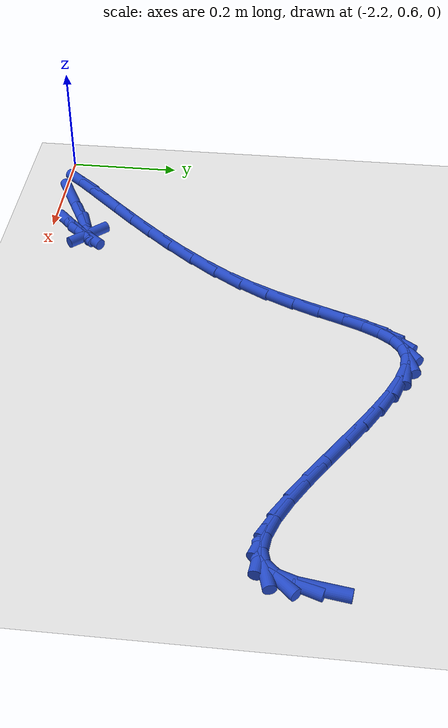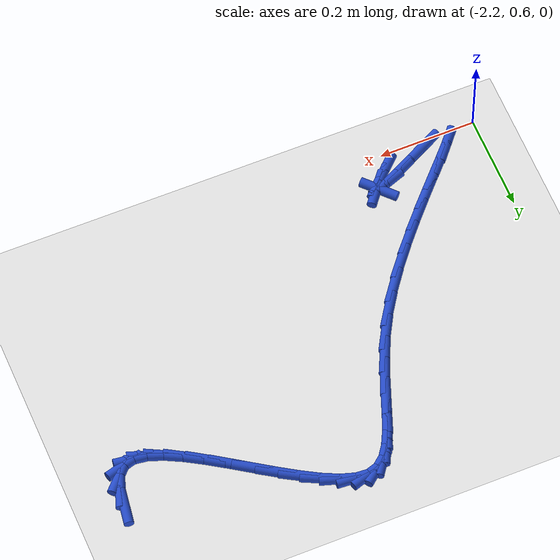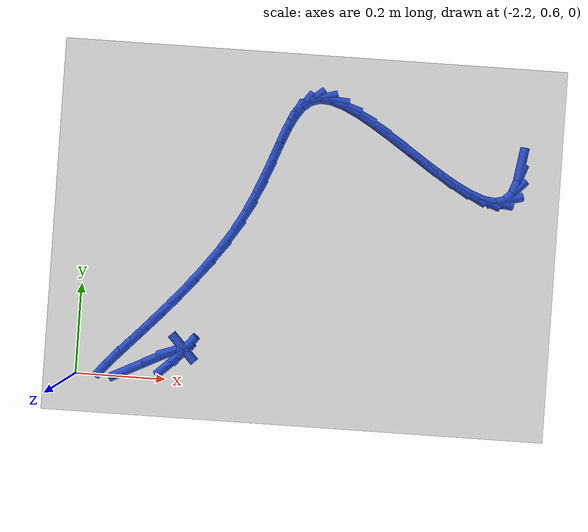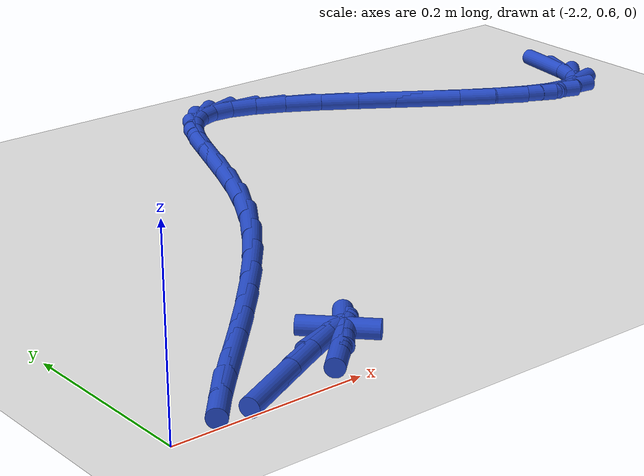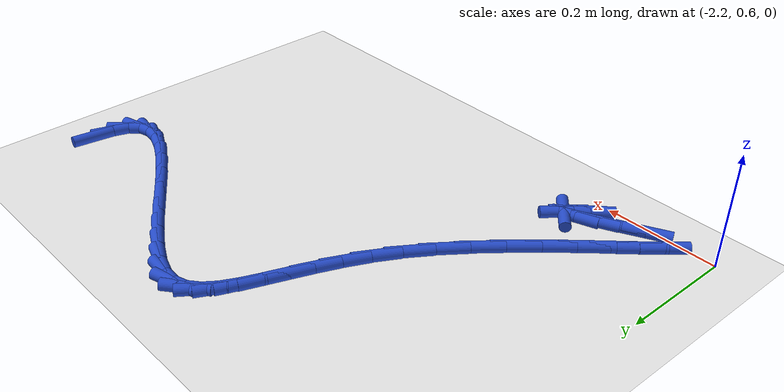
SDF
<sdf version="1.6">
 <world name="default">
  <model name="ground_plane">
   <static>1</static>
   <link name="link">
    <collision name="collision">
     <geometry><plane><normal>0 0 1</normal><size>100 100</size></plane></geometry>
     <surface><friction><ode><mu>100</mu><mu2>50</mu2></ode></friction></surface>
    </collision>
    <visual name="visual">
     <cast_shadows>0</cast_shadows>
     <geometry><plane><normal>0 0 1</normal><size>100 100</size></plane></geometry>
     <material>
      <script><uri>file://media/materials/scripts/gazebo.material</uri><name>Gazebo/WhiteGlow</name></script>
     </material>
    </visual>
   </link>
  </model>
  <model name="line">
   <link name="link_63">
    <pose>-1.2455601333749464 1.128434123868443 0.01 0 1.57 1.4183163308471</pose>
    <collision name="collision">
     <geometry><cylinder><radius>0.01</radius><length>0.08</length></cylinder></geometry>
    </collision>
    <visual name="visual">
     <material>
      <script><name>Gazebo/Blue</name><uri>file://media/materials/scripts/gazebo.material</uri></script>
     </material>
     <geometry><cylinder><radius>0.01</radius><length>0.08</length></cylinder></geometry>
    </visual>
   </link>
   <link name="link_64">
    <pose>-1.2509893350158225 1.0931045079351944 0.01 0 1.57 1.2281784227628185</pose>
    <collision name="collision">
     <geometry><cylinder><radius>0.01</radius><length>0.08</length></cylinder></geometry>
    </collision>
    <visual name="visual">
     <material>
      <script><name>Gazebo/Blue</name><uri>file://media/materials/scripts/gazebo.material</uri></script>
     </material>
     <geometry><cylinder><radius>0.01</radius><length>0.08</length></cylinder></geometry>
    </visual>
   </link>
   <link name="link_65">
    <pose>-1.2607478458669774 1.0657456108577843 0.01 0 1.57 0.8130356119794419</pose>
    <collision name="collision">
     <geometry><cylinder><radius>0.01</radius><length>0.08</length></cylinder></geometry>
    </collision>
    <visual name="visual">
     <material>
      <script><name>Gazebo/Blue</name><uri>file://media/materials/scripts/gazebo.material</uri></script>
     </material>
     <geometry><cylinder><radius>0.01</radius><length>0.08</length></cylinder></geometry>
    </visual>
   </link>
   <link name="link_66">
    <pose>-1.2763374845315405 1.0492695318625107 0.01 0 1.57 0.2641855386854352</pose>
    <collision name="collision">
     <geometry><cylinder><radius>0.01</radius><length>0.08</length></cylinder></geometry>
    </collision>
    <visual name="visual">
     <material>
      <script><name>Gazebo/Blue</name><uri>file://media/materials/scripts/gazebo.material</uri></script>
     </material>
     <geometry><cylinder><radius>0.01</radius><length>0.08</length></cylinder></geometry>
    </visual>
   </link>
   <link name="link_67">
    <pose>-1.2976512958888897 1.0435039689364574 0.01 0 1.57 -0.1289506563340826</pose>
    <collision name="collision">
     <geometry><cylinder><radius>0.01</radius><length>0.08</length></cylinder></geometry>
    </collision>
    <visual name="visual">
     <material>
      <script><name>Gazebo/Blue</name><uri>file://media/materials/scripts/gazebo.material</uri></script>
     </material>
     <geometry><cylinder><radius>0.01</radius><length>0.08</length></cylinder></geometry>
    </visual>
   </link>
   <link name="link_68">
    <pose>-1.3238659883446862 1.0469032329491783 0.01 0 1.57 -0.34871070913643787</pose>
    <collision name="collision">
     <geometry><cylinder><radius>0.01</radius><length>0.08</length></cylinder></geometry>
    </collision>
    <visual name="visual">
     <material>
      <script><name>Gazebo/Blue</name><uri>file://media/materials/scripts/gazebo.material</uri></script>
     </material>
     <geometry><cylinder><radius>0.01</radius><length>0.08</length></cylinder></geometry>
    </visual>
   </link>
   <link name="link_69">
    <pose>-1.354154991300058 1.0579153481399222 0.01 0 1.57 -0.47088769487693266</pose>
    <collision name="collision">
     <geometry><cylinder><radius>0.01</radius><length>0.08</length></cylinder></geometry>
    </collision>
    <visual name="visual">
     <material>
      <script><name>Gazebo/Blue</name><uri>file://media/materials/scripts/gazebo.material</uri></script>
     </material>
     <geometry><cylinder><radius>0.01</radius><length>0.08</length></cylinder></geometry>
    </visual>
   </link>
   <link name="link_70">
    <pose>-1.387691734156133 1.074988338747939 0.01 0 1.57 -0.5405655522259198</pose>
    <collision name="collision">
     <geometry><cylinder><radius>0.01</radius><length>0.08</length></cylinder></geometry>
    </collision>
    <visual name="visual">
     <material>
      <script><name>Gazebo/Blue</name><uri>file://media/materials/scripts/gazebo.material</uri></script>
     </material>
     <geometry><cylinder><radius>0.01</radius><length>0.08</length></cylinder></geometry>
    </visual>
   </link>
   <link name="link_71">
    <pose>-1.4236496463140416 1.0965702290124792 0.01 0 1.57 -0.5787990562046467</pose>
    <collision name="collision">
     <geometry><cylinder><radius>0.01</radius><length>0.08</length></cylinder></geometry>
    </collision>
    <visual name="visual">
     <material>
      <script><name>Gazebo/Blue</name><uri>file://media/materials/scripts/gazebo.material</uri></script>
     </material>
     <geometry><cylinder><radius>0.01</radius><length>0.08</length></cylinder></geometry>
    </visual>
   </link>
   <link name="link_72">
    <pose>-1.461202157174911 1.121109043172792 0.01 0 1.57 -0.5951359262471945</pose>
    <collision name="collision">
     <geometry><cylinder><radius>0.01</radius><length>0.08</length></cylinder></geometry>
    </collision>
    <visual name="visual">
     <material>
      <script><name>Gazebo/Blue</name><uri>file://media/materials/scripts/gazebo.material</uri></script>
     </material>
     <geometry><cylinder><radius>0.01</radius><length>0.08</length></cylinder></geometry>
    </visual>
   </link>
   <link name="link_73">
    <pose>-1.4995226961398695 1.1470528054681268 0.01 0 1.57 -0.593208794557632</pose>
    <collision name="collision">
     <geometry><cylinder><radius>0.01</radius><length>0.08</length></cylinder></geometry>
    </collision>
    <visual name="visual">
     <material>
      <script><name>Gazebo/Blue</name><uri>file://media/materials/scripts/gazebo.material</uri></script>
     </material>
     <geometry><cylinder><radius>0.01</radius><length>0.08</length></cylinder></geometry>
    </visual>
   </link>
   <link name="link_74">
    <pose>-1.5377846926100471 1.1728495401377343 0.01 0 1.57 -0.5726565086281046</pose>
    <collision name="collision">
     <geometry><cylinder><radius>0.01</radius><length>0.08</length></cylinder></geometry>
    </collision>
    <visual name="visual">
     <material>
      <script><name>Gazebo/Blue</name><uri>file://media/materials/scripts/gazebo.material</uri></script>
     </material>
     <geometry><cylinder><radius>0.01</radius><length>0.08</length></cylinder></geometry>
    </visual>
   </link>
   <link name="link_75">
    <pose>-1.5751615759865714 1.1969472714208635 0.01 0 1.57 -0.5289537291684662</pose>
    <collision name="collision">
     <geometry><cylinder><radius>0.01</radius><length>0.08</length></cylinder></geometry>
    </collision>
    <visual name="visual">
     <material>
      <script><name>Gazebo/Blue</name><uri>file://media/materials/scripts/gazebo.material</uri></script>
     </material>
     <geometry><cylinder><radius>0.01</radius><length>0.08</length></cylinder></geometry>
    </visual>
   </link>
   <link name="link_76">
    <pose>-1.6108267756705714 1.2177940235567648 0.01 0 1.57 -0.4510191171223614</pose>
    <collision name="collision">
     <geometry><cylinder><radius>0.01</radius><length>0.08</length></cylinder></geometry>
    </collision>
    <visual name="visual">
     <material>
      <script><name>Gazebo/Blue</name><uri>file://media/materials/scripts/gazebo.material</uri></script>
     </material>
     <geometry><cylinder><radius>0.01</radius><length>0.08</length></cylinder></geometry>
    </visual>
   </link>
   <link name="link_77">
    <pose>-1.6439537210631752 1.2338378207846874 0.01 0 1.57 -0.3147234488270683</pose>
    <collision name="collision">
     <geometry><cylinder><radius>0.01</radius><length>0.08</length></cylinder></geometry>
    </collision>
    <visual name="visual">
     <material>
      <script><name>Gazebo/Blue</name><uri>file://media/materials/scripts/gazebo.material</uri></script>
     </material>
     <geometry><cylinder><radius>0.01</radius><length>0.08</length></cylinder></geometry>
    </visual>
   </link>
   <link name="link_78">
    <pose>-1.6737158415655125 1.243526687343882 0.01 0 1.57 -0.07005587584338384</pose>
    <collision name="collision">
     <geometry><cylinder><radius>0.01</radius><length>0.08</length></cylinder></geometry>
    </collision>
    <visual name="visual">
     <material>
      <script><name>Gazebo/Blue</name><uri>file://media/materials/scripts/gazebo.material</uri></script>
     </material>
     <geometry><cylinder><radius>0.01</radius><length>0.08</length></cylinder></geometry>
    </visual>
   </link>
   <link name="link_79">
    <pose>-1.699296269519936 1.2453216841003474 0.01 0 1.57 0.3082629461399176</pose>
    <collision name="collision">
     <geometry><cylinder><radius>0.01</radius><length>0.08</length></cylinder></geometry>
    </collision>
    <visual name="visual">
     <material>
      <script><name>Gazebo/Blue</name><uri>file://media/materials/scripts/gazebo.material</uri></script>
     </material>
     <geometry><cylinder><radius>0.01</radius><length>0.08</length></cylinder></geometry>
    </visual>
   </link>
   <link name="link_80">
    <pose>-1.720530532013136 1.2385604130201386 0.01 0 1.57 0.6863666119409795</pose>
    <collision name="collision">
     <geometry><cylinder><radius>0.01</radius><length>0.08</length></cylinder></geometry>
    </collision>
    <visual name="visual">
     <material>
      <script><name>Gazebo/Blue</name><uri>file://media/materials/scripts/gazebo.material</uri></script>
     </material>
     <geometry><cylinder><radius>0.01</radius><length>0.08</length></cylinder></geometry>
    </visual>
   </link>
   <link name="link_81">
    <pose>-1.7383079537936892 1.2239963319906033 0.01 0 1.57 0.9517958751249804</pose>
    <collision name="collision">
     <geometry><cylinder><radius>0.01</radius><length>0.08</length></cylinder></geometry>
    </collision>
    <visual name="visual">
     <material>
      <script><name>Gazebo/Blue</name><uri>file://media/materials/scripts/gazebo.material</uri></script>
     </material>
     <geometry><cylinder><radius>0.01</radius><length>0.08</length></cylinder></geometry>
    </visual>
   </link>
   <link name="link_82">
    <pose>-1.7536136756161138 1.2025116348645122 0.01 0 1.57 1.1054758057366276</pose>
    <collision name="collision">
     <geometry><cylinder><radius>0.01</radius><length>0.08</length></cylinder></geometry>
    </collision>
    <visual name="visual">
     <material>
      <script><name>Gazebo/Blue</name><uri>file://media/materials/scripts/gazebo.material</uri></script>
     </material>
     <geometry><cylinder><radius>0.01</radius><length>0.08</length></cylinder></geometry>
    </visual>
   </link>
   <link name="link_83">
    <pose>-1.767432838234926 1.1749885154946356 0.01 0 1.57 1.1838173204450204</pose>
    <collision name="collision">
     <geometry><cylinder><radius>0.01</radius><length>0.08</length></cylinder></geometry>
    </collision>
    <visual name="visual">
     <material>
      <script><name>Gazebo/Blue</name><uri>file://media/materials/scripts/gazebo.material</uri></script>
     </material>
     <geometry><cylinder><radius>0.01</radius><length>0.08</length></cylinder></geometry>
    </visual>
   </link>
   <link name="link_84">
    <pose>-1.7807505824046435 1.1423091677337438 0.01 0 1.57 1.2133561401373434</pose>
    <collision name="collision">
     <geometry><cylinder><radius>0.01</radius><length>0.08</length></cylinder></geometry>
    </collision>
    <visual name="visual">
     <material>
      <script><name>Gazebo/Blue</name><uri>file://media/materials/scripts/gazebo.material</uri></script>
     </material>
     <geometry><cylinder><radius>0.01</radius><length>0.08</length></cylinder></geometry>
    </visual>
   </link>
   <link name="link_85">
    <pose>-1.7945520488797828 1.105355785434608 0.01 0 1.57 1.2089680139124221</pose>
    <collision name="collision">
     <geometry><cylinder><radius>0.01</radius><length>0.08</length></cylinder></geometry>
    </collision>
    <visual name="visual">
     <material>
      <script><name>Gazebo/Blue</name><uri>file://media/materials/scripts/gazebo.material</uri></script>
     </material>
     <geometry><cylinder><radius>0.01</radius><length>0.08</length></cylinder></geometry>
    </visual>
   </link>
   <link name="link_86">
    <pose>-1.8098223784148617 1.0650105624499988 0.01 0 1.57 1.1786298504474582</pose>
    <collision name="collision">
     <geometry><cylinder><radius>0.01</radius><length>0.08</length></cylinder></geometry>
    </collision>
    <visual name="visual">
     <material>
      <script><name>Gazebo/Blue</name><uri>file://media/materials/scripts/gazebo.material</uri></script>
     </material>
     <geometry><cylinder><radius>0.01</radius><length>0.08</length></cylinder></geometry>
    </visual>
   </link>
   <link name="link_87">
    <pose>-1.8275467117643969 1.0221556926326862 0.01 0 1.57 1.1267176685425029</pose>
    <collision name="collision">
     <geometry><cylinder><radius>0.01</radius><length>0.08</length></cylinder></geometry>
    </collision>
    <visual name="visual">
     <material>
      <script><name>Gazebo/Blue</name><uri>file://media/materials/scripts/gazebo.material</uri></script>
     </material>
     <geometry><cylinder><radius>0.01</radius><length>0.08</length></cylinder></geometry>
    </visual>
   </link>
   <link name="link_88">
    <pose>-1.8487101896829055 0.977673369835442 0.01 0 1.57 1.0561657213988627</pose>
    <collision name="collision">
     <geometry><cylinder><radius>0.01</radius><length>0.08</length></cylinder></geometry>
    </collision>
    <visual name="visual">
     <material>
      <script><name>Gazebo/Blue</name><uri>file://media/materials/scripts/gazebo.material</uri></script>
     </material>
     <geometry><cylinder><radius>0.01</radius><length>0.08</length></cylinder></geometry>
    </visual>
   </link>
   <link name="link_89">
    <pose>-1.8742849130809207 0.932444714597224 0.01 0 1.57 0.9830092596405903</pose>
    <collision name="collision">
     <geometry><cylinder><radius>0.01</radius><length>0.08</length></cylinder></geometry>
    </collision>
    <visual name="visual">
     <material>
      <script><name>Gazebo/Blue</name><uri>file://media/materials/scripts/gazebo.material</uri></script>
     </material>
     <geometry><cylinder><radius>0.01</radius><length>0.08</length></cylinder></geometry>
    </visual>
   </link>
   <link name="link_90">
    <pose>-1.9043807460078594 0.8872798764597365 0.01 0 1.57 0.926738214381568</pose>
    <collision name="collision">
     <geometry><cylinder><radius>0.01</radius><length>0.08</length></cylinder></geometry>
    </collision>
    <visual name="visual">
     <material>
      <script><name>Gazebo/Blue</name><uri>file://media/materials/scripts/gazebo.material</uri></script>
     </material>
     <geometry><cylinder><radius>0.01</radius><length>0.08</length></cylinder></geometry>
    </visual>
   </link>
   <link name="link_91">
    <pose>-1.9377230323457544 0.8428750446581464 0.01 0 1.57 0.884495642762522</pose>
    <collision name="collision">
     <geometry><cylinder><radius>0.01</radius><length>0.08</length></cylinder></geometry>
    </collision>
    <visual name="visual">
     <material>
      <script><name>Gazebo/Blue</name><uri>file://media/materials/scripts/gazebo.material</uri></script>
     </material>
     <geometry><cylinder><radius>0.01</radius><length>0.08</length></cylinder></geometry>
    </visual>
   </link>
   <link name="link_92">
    <pose>-1.9729122185356147 0.7999161280785155 0.01 0 1.57 0.853176916357269</pose>
    <collision name="collision">
     <geometry><cylinder><radius>0.01</radius><length>0.08</length></cylinder></geometry>
    </collision>
    <visual name="visual">
     <material>
      <script><name>Gazebo/Blue</name><uri>file://media/materials/scripts/gazebo.material</uri></script>
     </material>
     <geometry><cylinder><radius>0.01</radius><length>0.08</length></cylinder></geometry>
    </visual>
   </link>
   <link name="link_93">
    <pose>-2.0085487510184477 0.7590890356069045 0.01 0 1.57 0.831106649978659</pose>
    <collision name="collision">
     <geometry><cylinder><radius>0.01</radius><length>0.08</length></cylinder></geometry>
    </collision>
    <visual name="visual">
     <material>
      <script><name>Gazebo/Blue</name><uri>file://media/materials/scripts/gazebo.material</uri></script>
     </material>
     <geometry><cylinder><radius>0.01</radius><length>0.08</length></cylinder></geometry>
    </visual>
   </link>
   <link name="link_94">
    <pose>-2.0432330762352637 0.7210796761293755 0.01 0 1.57 0.8179003141819051</pose>
    <collision name="collision">
     <geometry><cylinder><radius>0.01</radius><length>0.08</length></cylinder></geometry>
    </collision>
    <visual name="visual">
     <material>
      <script><name>Gazebo/Blue</name><uri>file://media/materials/scripts/gazebo.material</uri></script>
     </material>
     <geometry><cylinder><radius>0.01</radius><length>0.08</length></cylinder></geometry>
    </visual>
   </link>
   <link name="link_95">
    <pose>-2.0755656406270684 0.686573958531989 0.01 0 1.57 0.8148462340817876</pose>
    <collision name="collision">
     <geometry><cylinder><radius>0.01</radius><length>0.08</length></cylinder></geometry>
    </collision>
    <visual name="visual">
     <material>
      <script><name>Gazebo/Blue</name><uri>file://media/materials/scripts/gazebo.material</uri></script>
     </material>
     <geometry><cylinder><radius>0.01</radius><length>0.08</length></cylinder></geometry>
    </visual>
   </link>
   <link name="link_96">
    <pose>-2.1041468906348713 0.6562577917008064 0.01 0 1.57 0.8265102482317889</pose>
    <collision name="collision">
     <geometry><cylinder><radius>0.01</radius><length>0.08</length></cylinder></geometry>
    </collision>
    <visual name="visual">
     <material>
      <script><name>Gazebo/Blue</name><uri>file://media/materials/scripts/gazebo.material</uri></script>
     </material>
     <geometry><cylinder><radius>0.01</radius><length>0.08</length></cylinder></geometry>
    </visual>
   </link>
   <link name="link_97">
    <pose>-2.1275772726996816 0.6308170845218893 0.01 0 1.57 0.8668128864565462</pose>
    <collision name="collision">
     <geometry><cylinder><radius>0.01</radius><length>0.08</length></cylinder></geometry>
    </collision>
    <visual name="visual">
     <material>
      <script><name>Gazebo/Blue</name><uri>file://media/materials/scripts/gazebo.material</uri></script>
     </material>
     <geometry><cylinder><radius>0.01</radius><length>0.08</length></cylinder></geometry>
    </visual>
   </link>
   <link name="link_103">
    <pose>-2.085753677818937 0.6163753543610477 0.01 0 1.57 0.4668876714107639</pose>
    <collision name="collision">
     <geometry><cylinder><radius>0.01</radius><length>0.08</length></cylinder></geometry>
    </collision>
    <visual name="visual">
     <material>
      <script><name>Gazebo/Blue</name><uri>file://media/materials/scripts/gazebo.material</uri></script>
     </material>
     <geometry><cylinder><radius>0.01</radius><length>0.08</length></cylinder></geometry>
    </visual>
   </link>
   <link name="link_104">
    <pose>-2.0484181482259043 0.6351945768612597 0.01 0 1.57 0.4667301630912546</pose>
    <collision name="collision">
     <geometry><cylinder><radius>0.01</radius><length>0.08</length></cylinder></geometry>
    </collision>
    <visual name="visual">
     <material>
      <script><name>Gazebo/Blue</name><uri>file://media/materials/scripts/gazebo.material</uri></script>
     </material>
     <geometry><cylinder><radius>0.01</radius><length>0.08</length></cylinder></geometry>
    </visual>
   </link>
   <link name="link_105">
    <pose>-2.0120965553306003 0.6534955438880202 0.01 0 1.57 0.44328592333842437</pose>
    <collision name="collision">
     <geometry><cylinder><radius>0.01</radius><length>0.08</length></cylinder></geometry>
    </collision>
    <visual name="visual">
     <material>
      <script><name>Gazebo/Blue</name><uri>file://media/materials/scripts/gazebo.material</uri></script>
     </material>
     <geometry><cylinder><radius>0.01</radius><length>0.08</length></cylinder></geometry>
    </visual>
   </link>
   <link name="link_106">
    <pose>-1.98223419153236 0.6676742228222183 0.01 0 1.57 0.34515678373902464</pose>
    <collision name="collision">
     <geometry><cylinder><radius>0.01</radius><length>0.08</length></cylinder></geometry>
    </collision>
    <visual name="visual">
     <material>
      <script><name>Gazebo/Blue</name><uri>file://media/materials/scripts/gazebo.material</uri></script>
     </material>
     <geometry><cylinder><radius>0.01</radius><length>0.08</length></cylinder></geometry>
    </visual>
   </link>
   <link name="link_107">
    <pose>-1.96425828899957 0.6741374510950087 0.01 0 1.57 -0.8190024644762359</pose>
    <collision name="collision">
     <geometry><cylinder><radius>0.01</radius><length>0.08</length></cylinder></geometry>
    </collision>
    <visual name="visual">
     <material>
      <script><name>Gazebo/Blue</name><uri>file://media/materials/scripts/gazebo.material</uri></script>
     </material>
     <geometry><cylinder><radius>0.01</radius><length>0.08</length></cylinder></geometry>
    </visual>
   </link>
   <link name="link_108">
    <pose>-1.961120921755447 0.6707818086291352 0.01 0 1.57 0.9033847684411322</pose>
    <collision name="collision">
     <geometry><cylinder><radius>0.01</radius><length>0.08</length></cylinder></geometry>
    </collision>
    <visual name="visual">
     <material>
      <script><name>Gazebo/Blue</name><uri>file://media/materials/scripts/gazebo.material</uri></script>
     </material>
     <geometry><cylinder><radius>0.01</radius><length>0.08</length></cylinder></geometry>
    </visual>
   </link>
   <link name="link_109">
    <pose>-1.9708026607555613 0.6584961121793144 0.01 0 1.57 0.7874638761017827</pose>
    <collision name="collision">
     <geometry><cylinder><radius>0.01</radius><length>0.08</length></cylinder></geometry>
    </collision>
    <visual name="visual">
     <material>
      <script><name>Gazebo/Blue</name><uri>file://media/materials/scripts/gazebo.material</uri></script>
     </material>
     <geometry><cylinder><radius>0.01</radius><length>0.08</length></cylinder></geometry>
    </visual>
   </link>
   <link name="link_110">
    <pose>-1.9906892530007978 0.6385271897740209 0.01 0 1.57 0.7655080218928605</pose>
    <collision name="collision">
     <geometry><cylinder><radius>0.01</radius><length>0.08</length></cylinder></geometry>
    </collision>
    <visual name="visual">
     <material>
      <script><name>Gazebo/Blue</name><uri>file://media/materials/scripts/gazebo.material</uri></script>
     </material>
     <geometry><cylinder><radius>0.01</radius><length>0.08</length></cylinder></geometry>
    </visual>
   </link>
  </model>
 </world>
</sdf>
